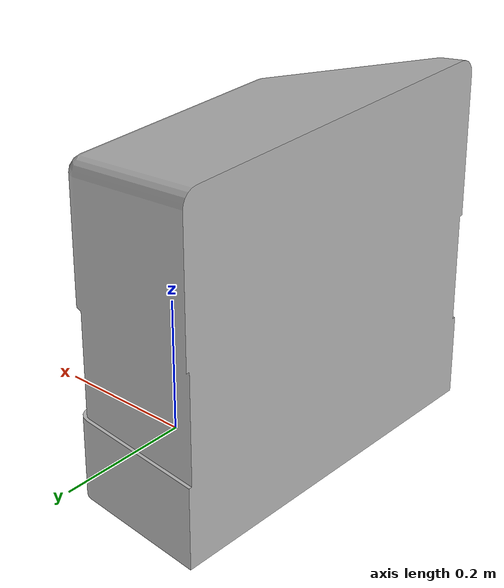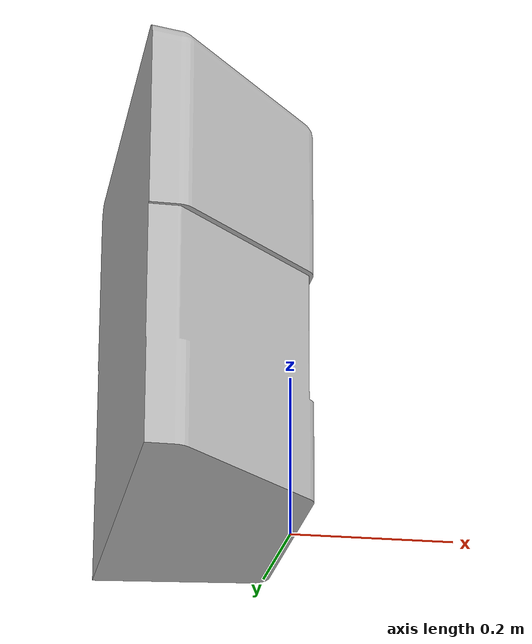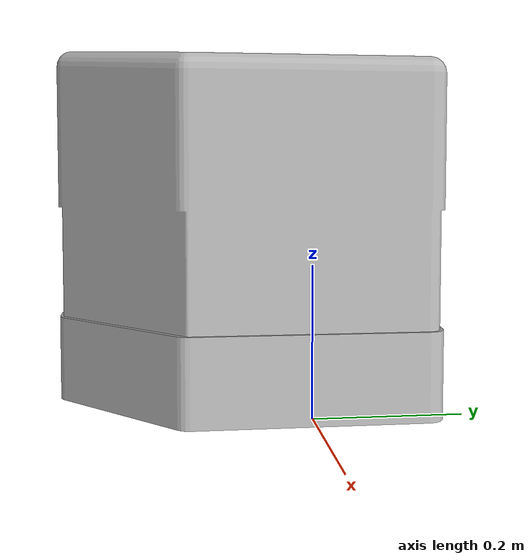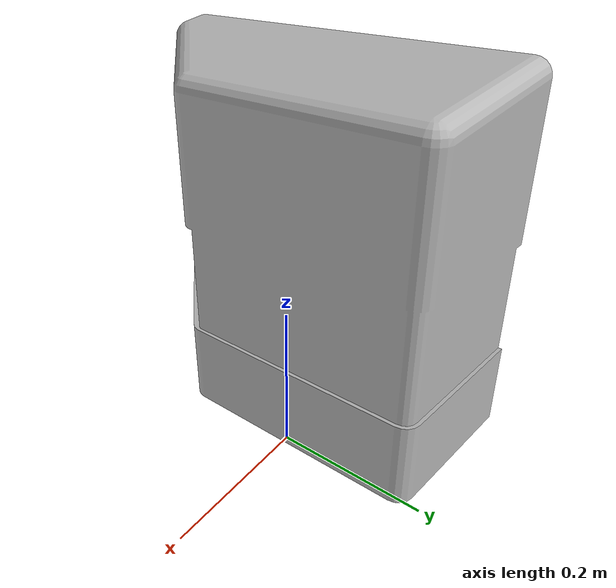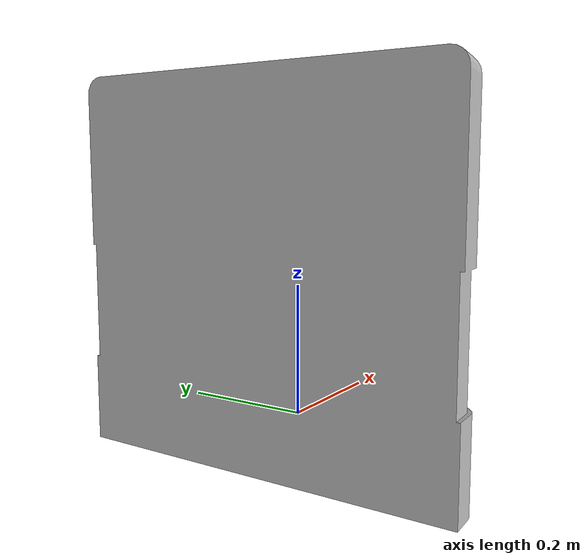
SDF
<sdf version='1.6'>
  <model name='nbx_wallbox'>
    <link name='link_1'>
	    <inertial>
        <mass>2</mass>
        <pose frame=''>0 0 0 0 0 0</pose>
        <inertia>
          <ixx>0.1</ixx>
          <ixy>0</ixy>
          <ixz>0</ixz>
          <iyy>0.1</iyy>
          <iyz>0</iyz>
          <izz>0.1</izz>
        </inertia>
      </inertial>
      <pose frame=''>0 0 0 0 -0 0</pose>
      <visual name='visual'>
        <geometry>
          <mesh>
            <uri>meshes/wallbox.dae</uri>
          </mesh>
        </geometry>
		    <meta><layer>1</layer></meta>
      </visual>
    </link>
    <static>true</static>
  </model>
</sdf>
